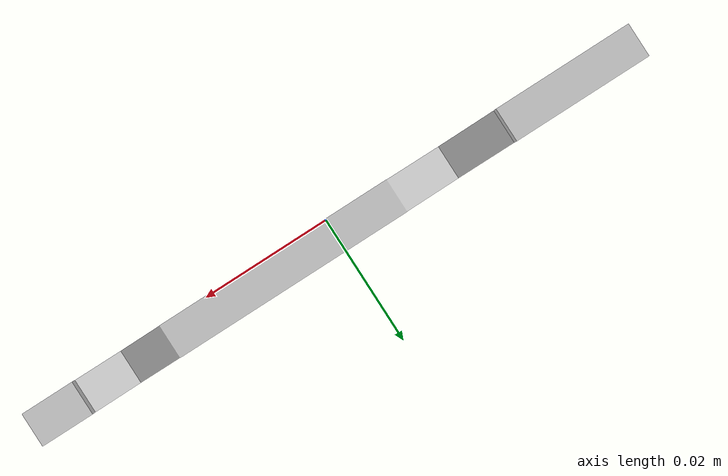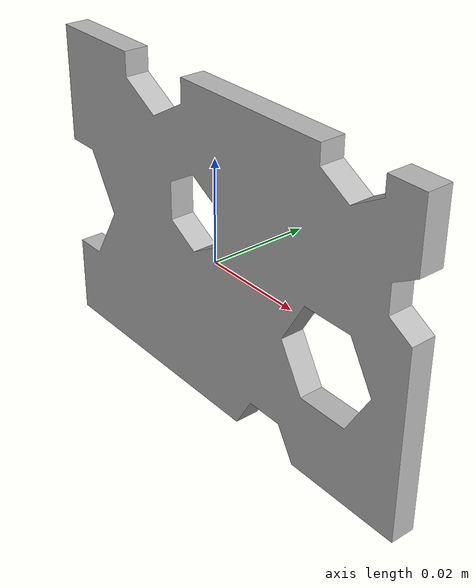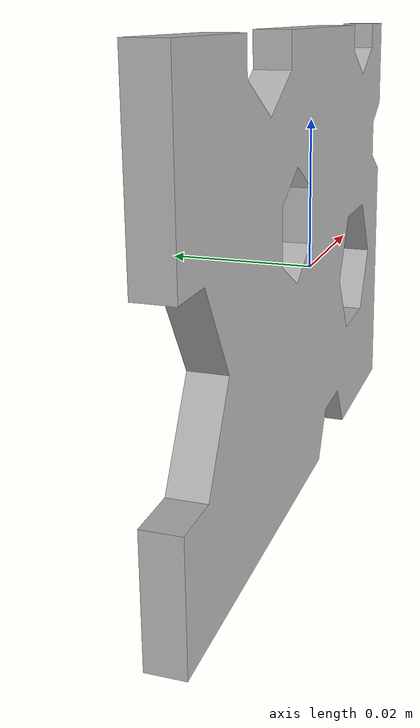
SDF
<?xml version="1.0"?>

<sdf version="1.6">

  <model name="sliced_cheese">

    <static>false</static>

    <link name="link">

      <visual name="visual">

        <geometry>
          <mesh>
            <uri>model://sliced_cheese/meshes/cheeseCut.obj</uri>
            <scale>0.24 0.24 0.24</scale>
          </mesh>
        </geometry>

      </visual>

      <collision name="collision">

        <geometry>
          <mesh>
            <uri>model://sliced_cheese/meshes/cheeseCut.obj</uri>
            <scale>0.24 0.24 0.24</scale>
          </mesh>
        </geometry>

      </collision>

    </link>

  </model>

</sdf>
